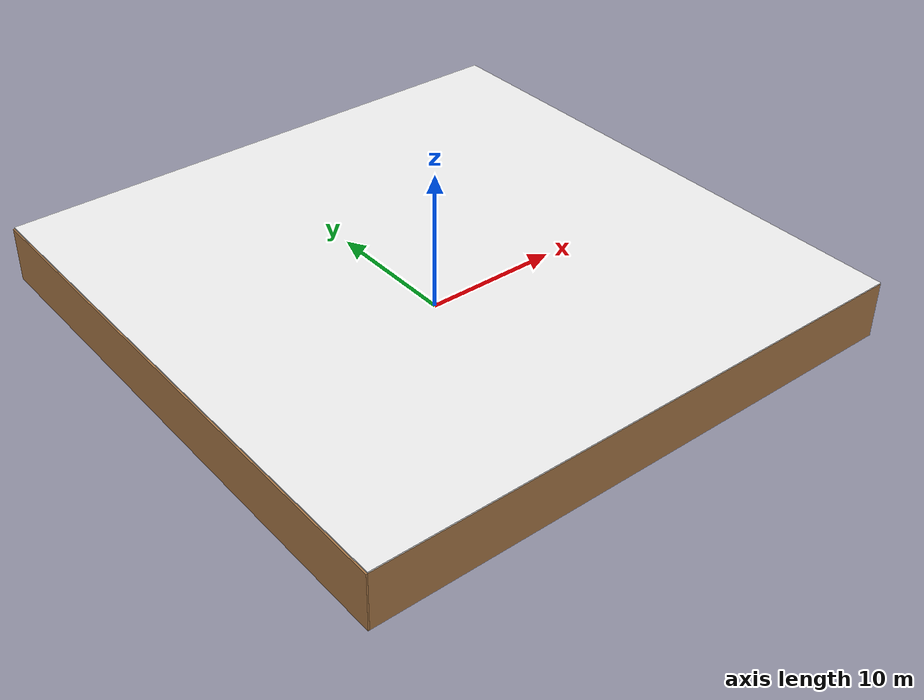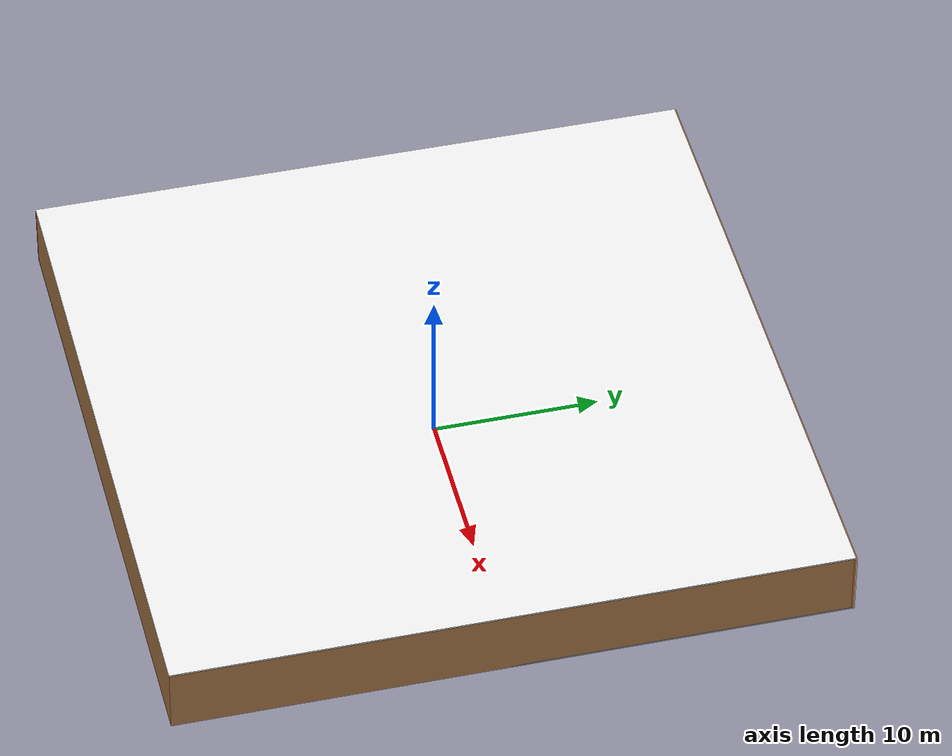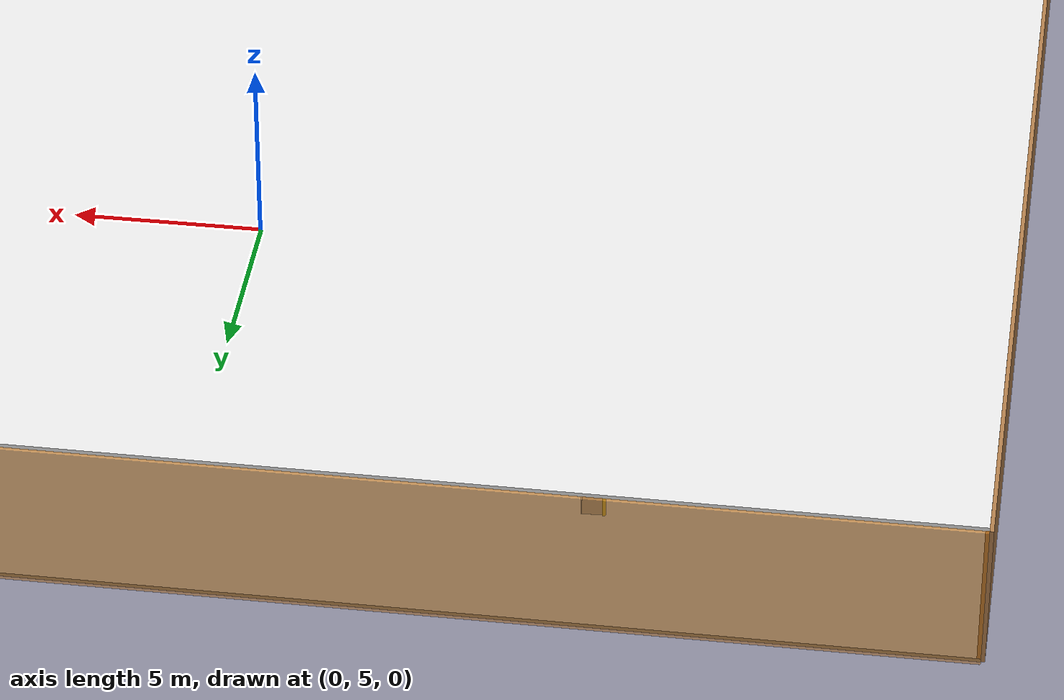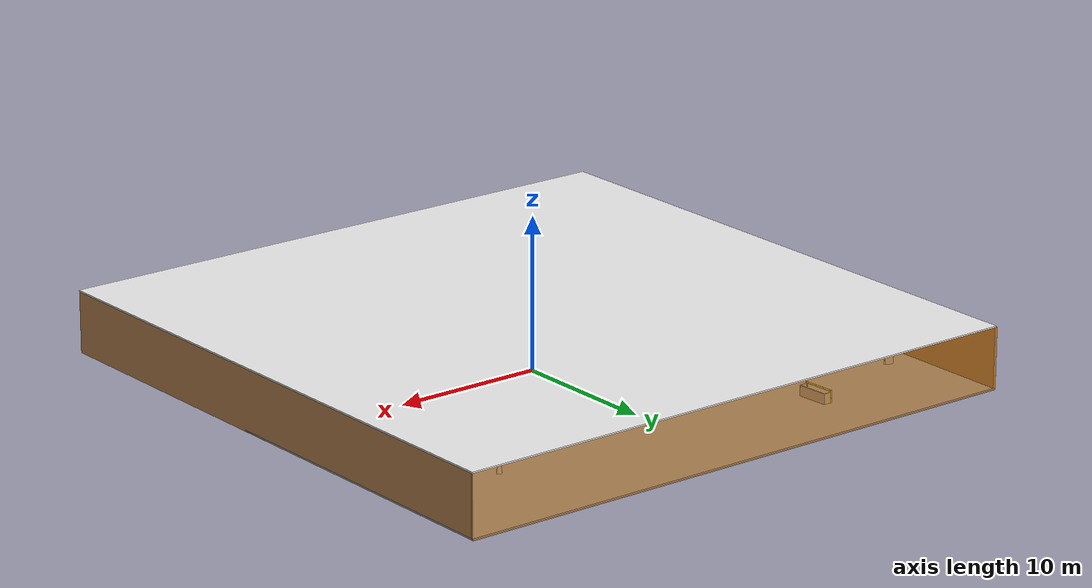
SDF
<sdf version="1.4">
 <world name="default">
  <physics type="ode">
   <max_step_size>0.001</max_step_size>
   <real_time_factor>1</real_time_factor>
   <real_time_update_rate>1000</real_time_update_rate>
   <gravity>0 0 -9.8</gravity>
  </physics>
  <scene><ambient>0.4 0.4 0.4 1</ambient><background>0.7 0.7 0.7 1</background><shadows>1</shadows></scene>
  <model name="Surrounding">
   <static>1</static>
   <link name="Ceiling">
    <collision name="Ceiling_Collision"><geometry><box><size>40 40 0.1</size></box></geometry></collision>
    <visual name="Ceiling_Visual">
     <geometry><box><size>40 40 0.1</size></box></geometry>
     <material>
      <script><uri>file://media/materials/scripts/gazebo.material</uri><name>Gazebo/White</name></script>
     </material>
    </visual>
    <pose>0 0 4.05 0 0 0</pose>
   </link>
   <link name="Wall_South">
    <collision name="Wall_South_Collision">
     <geometry><box><size>40 0 4</size></box></geometry>
     <pose>0 0 2 0 -0 0</pose>
    </collision>
    <visual name="Wall_South_Visual">
     <pose>0 0 2 0 -0 0</pose>
     <geometry><box><size>40 0 4</size></box></geometry>
     <material>
      <script><uri>file://media/materials/scripts/gazebo.material</uri><name>Gazebo/WoodPallet</name></script>
     </material>
    </visual>
    <velocity_decay><linear>0</linear><angular>0</angular></velocity_decay>
    <pose>0 -20 0 0 -0 0</pose>
   </link>
   <link name="Wall_East">
    <collision name="Wall_21_Collision">
     <geometry><box><size>40 0 4</size></box></geometry>
     <pose>0 0 2 0 -0 0</pose>
    </collision>
    <visual name="Wall_21_Visual">
     <pose>0 0 2 0 -0 0</pose>
     <geometry><box><size>40 0 4</size></box></geometry>
     <material>
      <script><uri>file://media/materials/scripts/gazebo.material</uri><name>Gazebo/WoodFloor</name></script>
     </material>
    </visual>
    <velocity_decay><linear>0</linear><angular>0</angular></velocity_decay>
    <pose>20 0 0 0 -0 1.5708</pose>
   </link>
   <link name="Wall_North">
    <collision name="Wall_22_Collision">
     <geometry><box><size>40 0.2 4</size></box></geometry>
     <pose>0 0 2 0 -0 0</pose>
    </collision>
    <visual name="Wall_22_Visual">
     <pose>0 0 2 0 -0 0</pose>
     <geometry><box><size>40 0.2 4</size></box></geometry>
     <material>
      <script>
       <uri>file://media/materials/scripts/gazebo.material</uri>
       <name>Gazebo/OrangeTransparent</name>
      </script>
     </material>
    </visual>
    <velocity_decay><linear>0</linear><angular>0</angular></velocity_decay>
    <pose>0 20 0 0 -0 0</pose>
   </link>
   <link name="Wall_West">
    <collision name="Wall_23_Collision">
     <geometry><box><size>40 0.2 4</size></box></geometry>
     <pose>0 0 2 0 -0 0</pose>
    </collision>
    <visual name="Wall_23_Visual">
     <pose>0 0 2 0 -0 0</pose>
     <geometry><box><size>40 0.2 4</size></box></geometry>
     <material>
      <script><uri>file://media/materials/scripts/gazebo.material</uri><name>Gazebo/WoodPallet</name></script>
     </material>
    </visual>
    <velocity_decay><linear>0</linear><angular>0</angular></velocity_decay>
    <pose>-20 0 0 0 0 -1.5708</pose>
   </link>
   <link name="Ground_link">
    <collision name="collision">
     <pose>0 0 .05 0 -0 0</pose>
     <geometry><box><size>40 40 0.1</size></box></geometry>
    </collision>
    <visual name="visual">
     <pose>0 0 .05 0 -0 0</pose>
     <geometry><box><size>40 40 0.1</size></box></geometry>
     <material>
      <script><uri>file://media/materials/scripts/gazebo.material</uri><name>Gazebo/Grey</name></script>
     </material>
    </visual>
   </link>
   <static>1</static>
  </model>
  <spherical_coordinates>
   <surface_model>EARTH_WGS84</surface_model>
   <latitude_deg>0</latitude_deg>
   <longitude_deg>0</longitude_deg>
   <elevation>0</elevation>
   <heading_deg>0</heading_deg>
  </spherical_coordinates>
  <light name="lightball_0" type="diffuse">
   <diffuse>0.8 0.8 0.8 1</diffuse>
   <specular>0.2 0.2 0.2 1</specular>
   <attenuation>
    <range>100</range>
    <constant>0.7</constant>
    <linear>0.01</linear>
    <quadratic>0.001</quadratic>
   </attenuation>
   <direction>-0.5 0.1 -0.9</direction>
   <pose>-13.8797366237 -14.18339327 1.66746478461 0 0 0</pose>
  </light>
  <light name="lightball_1" type="diffuse">
   <diffuse>0.8 0.8 0.8 1</diffuse>
   <specular>0.2 0.2 0.2 1</specular>
   <attenuation>
    <range>100</range>
    <constant>0.7</constant>
    <linear>0.01</linear>
    <quadratic>0.001</quadratic>
   </attenuation>
   <direction>-0.5 0.1 -0.9</direction>
   <pose>-7.93106142775 -13.757591072 3.01197895009 0 0 0</pose>
  </light>
  <light name="lightball_2" type="diffuse">
   <diffuse>0.8 0.8 0.8 1</diffuse>
   <specular>0.2 0.2 0.2 1</specular>
   <attenuation>
    <range>100</range>
    <constant>0.7</constant>
    <linear>0.01</linear>
    <quadratic>0.001</quadratic>
   </attenuation>
   <direction>-0.5 0.1 -0.9</direction>
   <pose>-6.71986160586 -11.8568481367 3.1903183597 0 0 0</pose>
  </light>
  <light name="lightball_3" type="diffuse">
   <diffuse>0.8 0.8 0.8 1</diffuse>
   <specular>0.2 0.2 0.2 1</specular>
   <attenuation>
    <range>100</range>
    <constant>0.7</constant>
    <linear>0.01</linear>
    <quadratic>0.001</quadratic>
   </attenuation>
   <direction>-0.5 0.1 -0.9</direction>
   <pose>1.85748460587 -10.9271738836 0.810547895528 0 0 0</pose>
  </light>
  <light name="lightball_4" type="diffuse">
   <diffuse>0.8 0.8 0.8 1</diffuse>
   <specular>0.2 0.2 0.2 1</specular>
   <attenuation>
    <range>100</range>
    <constant>0.7</constant>
    <linear>0.01</linear>
    <quadratic>0.001</quadratic>
   </attenuation>
   <direction>-0.5 0.1 -0.9</direction>
   <pose>-9.6134542902 0.769837254562 3.42685002398 0 0 0</pose>
  </light>
  <light name="lightball_5" type="diffuse">
   <diffuse>0.8 0.8 0.8 1</diffuse>
   <specular>0.2 0.2 0.2 1</specular>
   <attenuation>
    <range>100</range>
    <constant>0.7</constant>
    <linear>0.01</linear>
    <quadratic>0.001</quadratic>
   </attenuation>
   <direction>-0.5 0.1 -0.9</direction>
   <pose>9.36647650364 -10.6460412973 3.34620252257 0 0 0</pose>
  </light>
  <light name="lightball_6" type="diffuse">
   <diffuse>0.8 0.8 0.8 1</diffuse>
   <specular>0.2 0.2 0.2 1</specular>
   <attenuation>
    <range>100</range>
    <constant>0.7</constant>
    <linear>0.01</linear>
    <quadratic>0.001</quadratic>
   </attenuation>
   <direction>-0.5 0.1 -0.9</direction>
   <pose>7.76323217811 -2.74009207718 1.98931464094 0 0 0</pose>
  </light>
  <light name="lightball_7" type="diffuse">
   <diffuse>0.8 0.8 0.8 1</diffuse>
   <specular>0.2 0.2 0.2 1</specular>
   <attenuation>
    <range>100</range>
    <constant>0.7</constant>
    <linear>0.01</linear>
    <quadratic>0.001</quadratic>
   </attenuation>
   <direction>-0.5 0.1 -0.9</direction>
   <pose>-0.387083548289 14.2468431484 3.39447758398 0 0 0</pose>
  </light>
  <include>
   <uri>model://robocup_3Dsim_goal</uri>
   <pose>-17.2793008307 9.12946874349 0 0 0 0.480637746375</pose>
  </include>
  <include>
   <uri>model://robocup_3Dsim_goal</uri>
   <pose>-18.1222838889 11.783554048 0 0 0 2.6432967823</pose>
  </include>
  <include><uri>model://cabinet</uri><pose>-14.7949833986 6.78219205592 0 0 0 0.108092774536</pose></include>
  <include>
   <uri>model://construction_cone</uri>
   <pose>-10.319601084 -15.3045724332 0 0 0 2.68391269199</pose>
  </include>
  <include><uri>model://table</uri><pose>-10.7105625524 -10.5581433625 0 0 0 2.23940883272</pose></include>
  <include>
   <uri>model://textured_shapes</uri>
   <pose>-11.1358287293 -1.74375960899 0 0 0 0.792342574475</pose>
  </include>
  <include>
   <uri>model://robocup_3Dsim_goal</uri>
   <pose>-10.4036595523 14.7513304225 0 0 0 0.0562041108054</pose>
  </include>
  <include>
   <uri>model://construction_cone</uri>
   <pose>-5.61257288493 -9.63318967142 0 0 0 1.34574548807</pose>
  </include>
  <include><uri>model://cabinet</uri><pose>-6.6230204926 -4.65787729054 0 0 0 0.268293581769</pose></include>
  <include><uri>model://cabinet</uri><pose>4.07208522826 -2.67828285466 0 0 0 0.184925224423</pose></include>
  <include>
   <uri>model://robocup_3Dsim_goal</uri>
   <pose>2.40480765608 5.77621750001 0 0 0 0.0664078622641</pose>
  </include>
  <include>
   <uri>model://construction_cone</uri>
   <pose>5.8516812996 -12.5562373683 0 0 0 0.457746559663</pose>
  </include>
  <include><uri>model://cabinet</uri><pose>7.62234364503 -1.61522658731 0 0 0 2.57824146968</pose></include>
  <include>
   <uri>model://construction_cone</uri>
   <pose>12.5310484488 12.8121414741 0 0 0 2.24691796062</pose>
  </include>
  <include><uri>model://cabinet</uri><pose>15.2457996555 -16.3596669805 0 0 0 2.01230768199</pose></include>
  <include><uri>model://cabinet</uri><pose>16.4810223594 13.2726332196 0 0 0 2.2222760823</pose></include>
  <include>
   <uri>model://robocup_3Dsim_goal</uri>
   <pose>18.5317958978 -13.480302338 0 0 0 0.269708224727</pose>
  </include>
 </world>
</sdf>

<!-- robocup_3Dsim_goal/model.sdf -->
<sdf version="1.5">
  <model name="robocup_3d_goal">
    <static>true</static>
    <link name="left_post">
      <pose>0 1.05 0.45 0 0 0</pose>
      <collision name="collision">
        <geometry>
          <cylinder>
            <radius>0.05</radius>
            <length>0.9</length>
          </cylinder>
        </geometry>
      </collision>
      <visual name="visual">
        <geometry>
          <cylinder>
            <radius>0.05</radius>
            <length>0.9</length>
          </cylinder>
        </geometry>
        <material>
          <script>
            <uri>file://media/materials/scripts/gazebo.material</uri>
            <name>Gazebo/ZincYellow</name>
          </script>
        </material>
      </visual>
    </link>
    <link name="left_support_horiz_lower">
      <pose>0.30 1.05 0.01 0 0 0</pose>
      <collision name="collision">
        <geometry>
          <box>
            <size>0.50 0.02 0.02</size>
          </box>
        </geometry>
      </collision>
      <visual name="visual">
        <geometry>
          <box>
            <size>0.50 0.02 0.02</size>
          </box>
        </geometry>
        <material>
          <script>
            <uri>file://media/materials/scripts/gazebo.material</uri>
            <name>Gazebo/White</name>
          </script>
        </material>
      </visual>
    </link>
    <link name="left_support_horiz_upper">
      <pose>0.30 1.05 0.79 0 0 0</pose>
      <collision name="collision">
        <geometry>
          <box>
            <size>0.50 0.02 0.02</size>
          </box>
        </geometry>
      </collision>
      <visual name="visual">
        <geometry>
          <box>
            <size>0.50 0.02 0.02</size>
          </box>
        </geometry>
        <material>
          <script>
            <uri>file://media/materials/scripts/gazebo.material</uri>
            <name>Gazebo/White</name>
          </script>
        </material>
      </visual>
    </link>
    <link name="left_support_vertical">
      <pose>0.56 1.05 0.4 0 1.5708 0</pose>
      <collision name="collision">
        <geometry>
          <box>
            <size>0.80 0.02 0.02</size>
          </box>
        </geometry>
      </collision>
      <visual name="visual">
        <geometry>
          <box>
            <size>0.80 0.02 0.02</size>
          </box>
        </geometry>
        <material>
          <script>
            <uri>file://media/materials/scripts/gazebo.material</uri>
            <name>Gazebo/White</name>
          </script>
        </material>
      </visual>
    </link>
    <link name="right_support_horiz_lower">
      <pose>0.30 -1.05 0.01 0 0 0</pose>
      <collision name="collision">
        <geometry>
          <box>
            <size>0.50 0.02 0.02</size>
          </box>
        </geometry>
      </collision>
      <visual name="visual">
        <geometry>
          <box>
            <size>0.50 0.02 0.02</size>
          </box>
        </geometry>
        <material>
          <script>
            <uri>file://media/materials/scripts/gazebo.material</uri>
            <name>Gazebo/White</name>
          </script>
        </material>
      </visual>
    </link>
    <link name="right_support_horiz_upper">
      <pose>0.30 -1.05 0.79 0 0 0</pose>
      <collision name="collision">
        <geometry>
          <box>
            <size>0.50 0.02 0.02</size>
          </box>
        </geometry>
      </collision>
      <visual name="visual">
        <geometry>
          <box>
            <size>0.50 0.02 0.02</size>
          </box>
        </geometry>
        <material>
          <script>
            <uri>file://media/materials/scripts/gazebo.material</uri>
            <name>Gazebo/White</name>
          </script>
        </material>
      </visual>
    </link>
    <link name="right_support_vertical">
      <pose>0.56 -1.05 0.4 0 1.5708 0</pose>
      <collision name="collision">
        <geometry>
          <box>
            <size>0.80 0.02 0.02</size>
          </box>
        </geometry>
      </collision>
      <visual name="visual">
        <geometry>
          <box>
            <size>0.80 0.02 0.02</size>
          </box>
        </geometry>
        <material>
          <script>
            <uri>file://media/materials/scripts/gazebo.material</uri>
            <name>Gazebo/White</name>
          </script>
        </material>
      </visual>
    </link>
    <link name="center_support_horiz_lower">
      <pose>0.56 0 0.01 0 1.5708 0</pose>
      <collision name="collision">
        <geometry>
          <box>
            <size>0.02 2.08 0.02</size>
          </box>
        </geometry>
      </collision>
      <visual name="visual">
        <geometry>
          <box>
            <size>0.02 2.08 0.02</size>
          </box>
        </geometry>
        <material>
          <script>
            <uri>file://media/materials/scripts/gazebo.material</uri>
            <name>Gazebo/White</name>
          </script>
        </material>
      </visual>
    </link>
    <link name="center_support_horiz_upper">
      <pose>0.56 0 0.79 0 1.5708 0</pose>
      <collision name="collision">
        <geometry>
          <box>
            <size>0.02 2.08 0.02</size>
          </box>
        </geometry>
      </collision>
      <visual name="visual">
        <geometry>
          <box>
            <size>0.02 2.08 0.02</size>
          </box>
        </geometry>
        <material>
          <script>
            <uri>file://media/materials/scripts/gazebo.material</uri>
            <name>Gazebo/White</name>
          </script>
        </material>
      </visual>
    </link>
    <link name="right_post">
      <pose>0 -1.05 0.45 0 0 0</pose>
      <collision name="collision">
        <geometry>
          <cylinder>
            <radius>0.05</radius>
            <length>0.9</length>
          </cylinder>
        </geometry>
      </collision>
      <visual name="visual">
        <geometry>
          <cylinder>
            <radius>0.05</radius>
            <length>0.9</length>
          </cylinder>
        </geometry>
        <material>
          <script>
            <uri>file://media/materials/scripts/gazebo.material</uri>
            <name>Gazebo/ZincYellow</name>
          </script>
        </material>
      </visual>
    </link>
    <link name="crossbar">
      <pose>0 0 0.85 1.57 1.57 0</pose>
      <collision name="collision">
        <geometry>
          <cylinder>
            <radius>0.05</radius>
            <length>2.0</length>
          </cylinder>
        </geometry>
      </collision>
      <visual name="visual">
        <geometry>
          <cylinder>
            <radius>0.05</radius>
            <length>2.0</length>
          </cylinder>
        </geometry>
        <material>
          <script>
            <uri>file://media/materials/scripts/gazebo.material</uri>
            <name>Gazebo/ZincYellow</name>
          </script>
        </material>
      </visual>
    </link>
    <link name="center_net">
      <pose>0.56 0 0.40 0 0 0</pose>
      <collision name="collision">
        <geometry>
          <box>
            <size>0.01 2.1 0.80</size>
          </box>
        </geometry>
      </collision>
      <visual name="visual">
        <geometry>
          <box>
            <size>0.01 2.1 0.80</size>
          </box>
        </geometry>
        <material>
          <script>
            <uri>model://../model_source/models/robocup09_spl_field/materials/scripts/</uri>
            <uri>model://../model_source/models/robocup09_spl_field/materials/textures/</uri>
            <name>RoboCup/Net</name>
          </script>
        </material>
      </visual>
    </link>
    <link name="left_net">
      <pose>0.30 1.05 0.40 0 0 0</pose>
      <collision name="collision">
        <geometry>
          <box>
            <size>0.50 0.01 0.76</size>
          </box>
        </geometry>
      </collision>
      <visual name="visual">
        <geometry>
          <box>
            <size>0.50 0.01 0.76</size>
          </box>
        </geometry>
        <material>
          <script>
            <uri>model://../model_source/models/robocup09_spl_field/materials/scripts/</uri>
            <uri>model://../model_source/models/robocup09_spl_field/materials/textures/</uri>
            <name>RoboCup/Net</name>
          </script>
        </material>
      </visual>
    </link>
    <link name="right_net">
      <pose>0.30 -1.05 0.40 0 0 0</pose>
      <collision name="collision">
        <geometry>
          <box>
            <size>0.50 0.01 0.76</size>
          </box>
        </geometry>
      </collision>
      <visual name="visual">
        <geometry>
          <box>
            <size>0.50 0.01 0.76</size>
          </box>
        </geometry>
        <material>
          <script>
            <uri>model://../model_source/models/robocup09_spl_field/materials/scripts/</uri>
            <uri>model://../model_source/models/robocup09_spl_field/materials/textures/</uri>
            <name>RoboCup/Net</name>
          </script>
        </material>
      </visual>
    </link>
  </model>
</sdf>

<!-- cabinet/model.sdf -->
<sdf version="1.5">
  <model name="cabinet">
    <static>true</static>
    <link name="cabinet_bottom_plate">
      <inertial>
        <pose>0 0 -1 0 0 0</pose>
        <inertia>
          <ixx>2.050000</ixx>
          <ixy>0</ixy>
          <ixz>0</ixz>
          <iyy>2.050000</iyy>
          <iyz>0</iyz>
          <izz>2.050000</izz>
        </inertia>
        <mass>25.000000</mass>
      </inertial>
      <collision name="cabinet_bottom_plate_geom">
        <pose>0 0 0.010000 0 0 0</pose>
        <geometry>
          <box>
            <size>0.450000 0.450000 0.020000</size>
          </box>
        </geometry>
      </collision>
      <visual name="cabinet_bottom_plate_geom_visual">
        <pose>0 0 0.010000 0 0 0</pose>
        <geometry>
          <box>
            <size>0.450000 0.450000 0.020000</size>
          </box>
        </geometry>
        <material>
          <script>
            <uri>model://media/materials/scripts/gazebo.material</uri>
            <name>Gazebo/Wood</name>
          </script>
        </material>
      </visual>
      <collision name="cabinet_bottom_plate_geom_cabinet_back_plate">
        <pose>0.235000 0 0.510000 0 0 0</pose>
        <geometry>
          <box>
            <size>0.020000 0.450000 1.020000</size>
          </box>
        </geometry>
      </collision>
      <visual name="cabinet_bottom_plate_geom_cabinet_back_plate_visual">
        <pose>0.235000 0 0.510000 0 0 0</pose>
        <geometry>
          <box>
            <size>0.020000 0.450000 1.020000</size>
          </box>
        </geometry>
        <material>
          <script>
            <uri>model://media/materials/scripts/gazebo.material</uri>
            <name>Gazebo/Wood</name>
          </script>
        </material>
      </visual>
      <collision name="cabinet_bottom_plate_geom_cabinet_left_plate">
        <pose>0 0.235000 0.510000 0 0 0</pose>
        <geometry>
          <box>
            <size>0.450000 0.020000 1.020000</size>
          </box>
        </geometry>
      </collision>
      <visual name="cabinet_bottom_plate_geom_cabinet_left_plate_visual">
        <pose>0 0.235000 0.510000 0 0 0</pose>
        <geometry>
          <box>
            <size>0.450000 0.020000 1.020000</size>
          </box>
        </geometry>
        <material>
          <script>
            <uri>model://media/materials/scripts/gazebo.material</uri>
            <name>Gazebo/Wood</name>
          </script>
        </material>
      </visual>
      <collision name="cabinet_bottom_plate_geom_cabinet_middle_plate">
        <pose>0 0 0.510000 0 0 0</pose>
        <geometry>
          <box>
            <size>0.450000 0.450000 0.020000</size>
          </box>
        </geometry>
      </collision>
      <visual name="cabinet_bottom_plate_geom_cabinet_middle_plate_visual">
        <pose>0 0 0.510000 0 0 0</pose>
        <geometry>
          <box>
            <size>0.450000 0.450000 0.020000</size>
          </box>
        </geometry>
        <material>
          <script>
            <uri>model://media/materials/scripts/gazebo.material</uri>
            <name>Gazebo/Wood</name>
          </script>
        </material>
      </visual>
      <collision name="cabinet_bottom_plate_geom_cabinet_right_plate">
        <pose>0 -0.235000 0.510000 0 0 0</pose>
        <geometry>
          <box>
            <size>0.450000 0.020000 1.020000</size>
          </box>
        </geometry>
      </collision>
      <visual name="cabinet_bottom_plate_geom_cabinet_right_plate_visual">
        <pose>0 -0.235000 0.510000 0 0 0</pose>
        <geometry>
          <box>
            <size>0.450000 0.020000 1.020000</size>
          </box>
        </geometry>
        <material>
          <script>
            <uri>model://media/materials/scripts/gazebo.material</uri>
            <name>Gazebo/Wood</name>
          </script>
        </material>
      </visual>
      <collision name="cabinet_bottom_plate_geom_cabinet_top_plate">
        <pose>0 0 1.010000 0 0 0</pose>
        <geometry>
          <box>
            <size>0.450000 0.450000 0.020000</size>
          </box>
        </geometry>
      </collision>
      <visual name="cabinet_bottom_plate_geom_cabinet_top_plate_visual">
        <pose>0 0 1.010000 0 0 0</pose>
        <geometry>
          <box>
            <size>0.450000 0.450000 0.020000</size>
          </box>
        </geometry>
        <material>
          <script>
            <uri>model://media/materials/scripts/gazebo.material</uri>
            <name>Gazebo/Wood</name>
          </script>
        </material>
      </visual>
    </link>
  </model>
</sdf>

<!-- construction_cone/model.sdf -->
<sdf version="1.5">
  <model name="Construction Cone">
    <link name="link">
      <collision name="collision">
        <geometry>
          <mesh>
            <scale>10 10 10</scale>
            <uri>file://isr-testbed/construction_cone/meshes/construction_cone.dae</uri>
          </mesh>
        </geometry>
      </collision>
      <visual name="visual">
        <geometry>
          <mesh>
            <scale>10 10 10</scale>
            <uri>file://isr-testbed/construction_cone/meshes/construction_cone.dae</uri>
          </mesh>
        </geometry>
      </visual>
    </link>
  </model>
</sdf>

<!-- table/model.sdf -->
<sdf version="1.5">
  <model name="table">
    <static>true</static>
    <link name="link">
      <collision name="surface">
        <pose>0 0 1.0 0 0 0</pose>
        <geometry>
          <box>
            <size>1.5 0.8 0.03</size>
          </box>
        </geometry>
        <surface>
          <friction>
            <ode>
              <mu>0.6</mu>
              <mu2>0.6</mu2>
            </ode>
          </friction>
        </surface>
      </collision>
      <visual name="visual1">
        <pose>0 0 1.0 0 0 0</pose>
        <geometry>
          <box>
            <size>1.5 0.8 0.03</size>
          </box>
        </geometry>
        <material>
          <script>
            <uri>model://media/materials/scripts/gazebo.material</uri>
            <name>Gazebo/Wood</name>
          </script>
        </material>
      </visual>
      <collision name="front_left_leg">
        <pose>0.68 0.38 0.5 0 0 0</pose>
        <geometry>
          <cylinder>
            <radius>0.02</radius>
            <length>1.0</length>
          </cylinder>
        </geometry>
      </collision>
      <visual name="front_left_leg">
        <pose>0.68 0.38 0.5 0 0 0</pose>
        <geometry>
          <cylinder>
            <radius>0.02</radius>
            <length>1.0</length>
          </cylinder>
        </geometry>
        <material>
          <script>
            <uri>model://media/materials/scripts/gazebo.material</uri>
            <name>Gazebo/Grey</name>
          </script>
        </material>
      </visual>
      <collision name="front_right_leg">
        <pose>0.68 -0.38 0.5 0 0 0</pose>
        <geometry>
          <cylinder>
            <radius>0.02</radius>
            <length>1.0</length>
          </cylinder>
        </geometry>
      </collision>
      <visual name="front_right_leg">
        <pose>0.68 -0.38 0.5 0 0 0</pose>
        <geometry>
          <cylinder>
            <radius>0.02</radius>
            <length>1.0</length>
          </cylinder>
        </geometry>
        <material>
          <script>
            <uri>model://media/materials/scripts/gazebo.material</uri>
            <name>Gazebo/Grey</name>
          </script>
        </material>
      </visual>
      <collision name="back_right_leg">
        <pose>-0.68 -0.38 0.5 0 0 0</pose>
        <geometry>
          <cylinder>
            <radius>0.02</radius>
            <length>1.0</length>
          </cylinder>
        </geometry>
      </collision>
      <visual name="back_right_leg">
        <pose>-0.68 -0.38 0.5 0 0 0</pose>
        <geometry>
          <cylinder>
            <radius>0.02</radius>
            <length>1.0</length>
          </cylinder>
        </geometry>
        <material>
          <script>
            <uri>model://media/materials/scripts/gazebo.material</uri>
            <name>Gazebo/Grey</name>
          </script>
        </material>
      </visual>
      <collision name="back_left_leg">
        <pose>-0.68 0.38 0.5 0 0 0</pose>
        <geometry>
          <cylinder>
            <radius>0.02</radius>
            <length>1.0</length>
          </cylinder>
        </geometry>
      </collision>
      <visual name="back_left_leg">
        <pose>-0.68 0.38 0.5 0 0 0</pose>
        <geometry>
          <cylinder>
            <radius>0.02</radius>
            <length>1.0</length>
          </cylinder>
        </geometry>
        <material>
          <script>
            <uri>model://media/materials/scripts/gazebo.material</uri>
            <name>Gazebo/Grey</name>
          </script>
        </material>
      </visual>
    </link>
  </model>
</sdf>

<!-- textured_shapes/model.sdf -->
<sdf version="1.6">
  <model name="textured_shapes">
    <pose>0 0 0.5 0 0 0</pose>
    <link name="box">
      <pose>0 -1.5 0 0 0 0</pose>
      <collision name="collision">
        <geometry>
          <box>
            <size>1 1 1</size>
          </box>
        </geometry>
      </collision>
      <visual name="visual">
        <geometry>
          <box>
            <size>1 1 1</size>
          </box>
        </geometry>
        <material>
          <script>
            <uri>model://../model_source/models/textured_shapes/materials/scripts</uri>
            <uri>model://../model_source/models/textured_shapes/materials/textures</uri>
            <name>TexturedShape/Squares</name>
          </script>
        </material>
      </visual>
    </link>
    <link name="sphere">
      <collision name="collision">
        <geometry>
          <sphere>
            <radius>0.5</radius>
          </sphere>
        </geometry>
      </collision>
      <visual name="visual">
        <geometry>
          <sphere>
            <radius>0.5</radius>
          </sphere>
        </geometry>
        <material>
          <script>
            <uri>model://../model_source/models/textured_shapes/materials/scripts</uri>
            <uri>model://../model_source/models/textured_shapes/materials/textures</uri>
            <name>TexturedShape/Squares</name>
          </script>
        </material>
      </visual>
    </link>
    <link name="cylinder">
      <pose>0 1.5 0 0 0 0</pose>
      <collision name="collision">
        <geometry>
          <cylinder>
            <radius>0.5</radius>
            <length>1</length>
          </cylinder>
        </geometry>
      </collision>
      <visual name="visual">
        <geometry>
          <cylinder>
            <radius>0.5</radius>
            <length>1</length>
          </cylinder>
        </geometry>
        <material>
          <script>
            <uri>model://../model_source/models/textured_shapes/materials/scripts</uri>
            <uri>model://../model_source/models/textured_shapes/materials/textures</uri>
            <name>TexturedShape/Squares</name>
          </script>
        </material>
      </visual>
    </link>
  </model>
</sdf>
